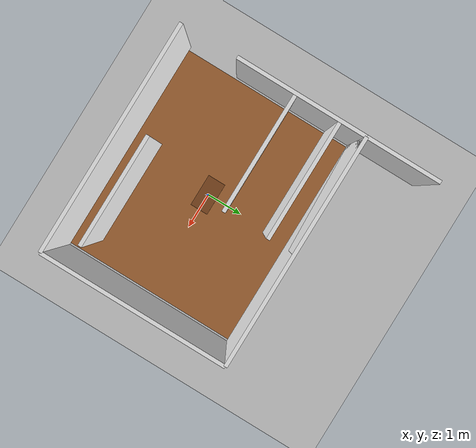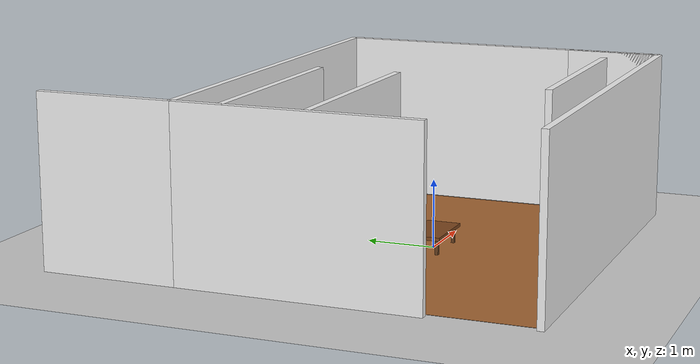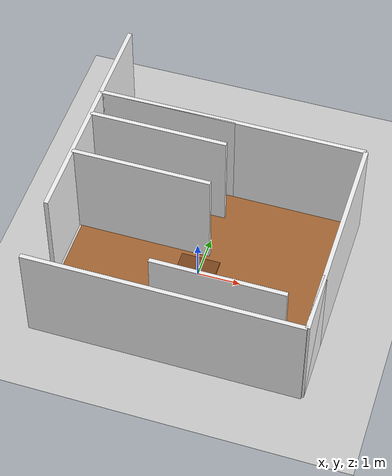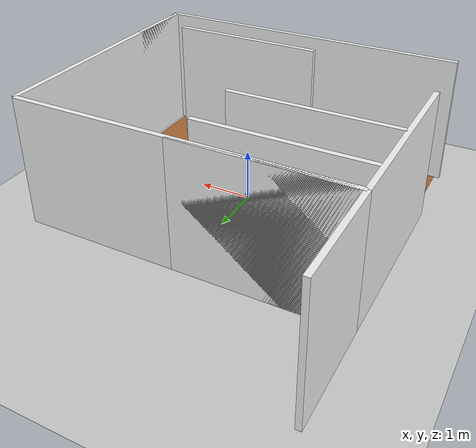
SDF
<?xml version="1.0"?>
<sdf version="1.6">
  <world name="3bhk_house">

    <!-- Physics -->
    <physics type="ode">
      <max_step_size>0.001</max_step_size>
      <real_time_factor>1.0</real_time_factor>
      <real_time_update_rate>1000</real_time_update_rate>
    </physics>

    <!-- Scene -->
    <scene>
      <ambient>0.4 0.4 0.45 1</ambient>
      <background>0.9 0.87 0.82 1</background>
      <shadows>true</shadows>
      <grid>false</grid>
    </scene>

    <!-- Ground -->
    <model name="ground_plane">
      <static>true</static>
      <link name="link">
        <collision name="collision">
          <geometry>
            <plane><normal>0 0 1</normal><size>100 100</size></plane>
          </geometry>
          <surface>
            <friction>
              <ode><mu>100</mu><mu2>50</mu2></ode>
            </friction>
          </surface>
        </collision>
        <visual name="visual">
          <geometry>
            <plane><normal>0 0 1</normal><size>100 100</size></plane>
          </geometry>
          <material>
            <ambient>0.8 0.8 0.8 1</ambient>
            <diffuse>0.8 0.8 0.8 1</diffuse>
          </material>
        </visual>
      </link>
    </model>

    <!-- Sun -->
    <light name="sun" type="directional">
      <pose>10 10 15 0 0 0</pose>
      <diffuse>1 0.95 0.85 1</diffuse>
      <specular>0.3 0.3 0.3 1</specular>
      <direction>-0.45 0.1 -0.88</direction>
      <cast_shadows>true</cast_shadows>
      <shadow><resolution>2048</resolution><near>0.5</near><far>30</far></shadow>
    </light>

    <!-- Indoor lights -->
    <light name="living_light" type="point">
      <pose>0 0 2.5 0 0 0</pose>
      <diffuse>0.9 0.9 0.85 1</diffuse>
      <attenuation><range>8</range><constant>0.5</constant><linear>0.01</linear><quadratic>0.001</quadratic></attenuation>
    </light>
    <light name="kitchen_light" type="point">
      <pose>3.5 -1.5 2.5 0 0 0</pose>
      <diffuse>0.9 0.9 0.85 1</diffuse>
      <attenuation><range>6</range><constant>0.5</constant><linear>0.01</linear><quadratic>0.001</quadratic></attenuation>
    </light>
    <light name="bedroom_light" type="point">
      <pose>-2 3.5 2.5 0 0 0</pose>
      <diffuse>0.9 0.9 0.85 1</diffuse>
      <attenuation><range>6</range><constant>0.5</constant><linear>0.01</linear><quadratic>0.001</quadratic></attenuation>
    </light>

    <!-- ==================== OUTER WALLS ==================== -->
    <!-- North wall (Living room + Kitchen) -->
    <model name="wall_north_living"><static>true</static><pose>0 2.5 1.25 0 0 0</pose>
      <link name="link"><collision name="c"><geometry><box><size>6.2 0.1 2.5</size></box></geometry></collision>
      <visual name="v"><geometry><box><size>6.2 0.1 2.5</size></box></geometry><material><ambient>0.95 0.95 0.95 1</ambient></material></visual></link></model>

    <!-- South wall -->
    <model name="wall_south"><static>true</static><pose>0 -2.5 1.25 0 0 0</pose>
      <link name="link"><collision name="c"><geometry><box><size>6.2 0.1 2.5</size></box></geometry></collision>
      <visual name="v"><geometry><box><size>6.2 0.1 2.5</size></box></geometry><material><ambient>0.95 0.95 0.95 1</ambient></material></visual></link></model>

    <!-- East wall (Living side) -->
    <model name="wall_east_living"><static>true</static><pose>3.1 0 1.25 0 0 0</pose>
      <link name="link"><collision name="c"><geometry><box><size>0.1 5.0 2.5</size></box></geometry></collision>
      <visual name="v"><geometry><box><size>0.1 5.0 2.5</size></box></geometry><material><ambient>0.95 0.95 0.95 1</ambient></material></visual></link></model>

    <!-- East wall (Kitchen extension) -->
    <model name="wall_east_kitchen"><static>true</static><pose>3.1 -1.8 1.25 0 0 0</pose>
      <link name="link"><collision name="c"><geometry><box><size>0.1 1.4 2.5</size></box></geometry></collision>
      <visual name="v"><geometry><box><size>0.1 1.4 2.5</size></box></geometry><material><ambient>0.95 0.95 0.95 1</ambient></material></visual></link></model>

    <!-- West wall (Living) -->
    <model name="wall_west_living"><static>true</static><pose>-3.1 0.75 1.25 0 0 0</pose>
      <link name="link"><collision name="c"><geometry><box><size>0.1 3.5 2.5</size></box></geometry></collision>
      <visual name="v"><geometry><box><size>0.1 3.5 2.5</size></box></geometry><material><ambient>0.95 0.95 0.95 1</ambient></material></visual></link></model>

    <!-- West wall (Bedroom side) -->
    <model name="wall_west_bed"><static>true</static><pose>-3.1 3.5 1.25 0 0 0</pose>
      <link name="link"><collision name="c"><geometry><box><size>0.1 2.0 2.5</size></box></geometry></collision>
      <visual name="v"><geometry><box><size>0.1 2.0 2.5</size></box></geometry><material><ambient>0.95 0.95 0.95 1</ambient></material></visual></link></model>

    <!-- ==================== INNER WALLS ==================== -->
    <!-- Living-Kitchen divider (with doorway at x=2.5) -->
    <model name="wall_living_kitchen_1"><static>true</static><pose>1.0 -1.8 1.25 0 0 0</pose>
      <link name="link"><collision name="c"><geometry><box><size>3.0 0.1 2.5</size></box></geometry></collision>
      <visual name="v"><geometry><box><size>3.0 0.1 2.5</size></box></geometry><material><ambient>0.95 0.95 0.95 1</ambient></material></visual></link></model>

    <!-- Hallway divider -->
    <model name="wall_hallway_north"><static>true</static><pose>-1.5 2.5 1.25 0 0 0</pose>
      <link name="link"><collision name="c"><geometry><box><size>3.2 0.1 2.5</size></box></geometry></collision>
      <visual name="v"><geometry><box><size>3.2 0.1 2.5</size></box></geometry><material><ambient>0.95 0.95 0.95 1</ambient></material></visual></link></model>

    <!-- Bedroom 1 divider (Master) -->
    <model name="wall_bed1_south"><static>true</static><pose>-1.5 1.8 1.25 0 0 0</pose>
      <link name="link"><collision name="c"><geometry><box><size>3.2 0.1 2.5</size></box></geometry></collision>
      <visual name="v"><geometry><box><size>3.2 0.1 2.5</size></box></geometry><material><ambient>0.95 0.95 0.95 1</ambient></material></visual></link></model>

    <!-- Bedroom 2 divider -->
    <model name="wall_bed2_south"><static>true</static><pose>-1.5 0.6 1.25 0 0 0</pose>
      <link name="link"><collision name="c"><geometry><box><size>3.2 0.1 2.5</size></box></geometry></collision>
      <visual name="v"><geometry><box><size>3.2 0.1 2.5</size></box></geometry><material><ambient>0.95 0.95 0.95 1</ambient></material></visual></link></model>

    <!-- Living room floor -->
    <model name="living_floor">
      <static>true</static><pose>0 0 0.002 0 0 0</pose>
      <link name="link"><collision name="c"><geometry><box><size>6.0 5.0 0.004</size></box></geometry></collision>
        <visual name="v"><geometry><box><size>6.0 5.0 0.004</size></box></geometry>
          <material><ambient>0.5 0.3 0.15 1</ambient><diffuse>0.65 0.4 0.2 1</diffuse><specular>0.1 0.1 0.1 1</specular>
            <pbr><metallic>0</metallic><roughness>0.7</roughness></pbr></material></visual></link>
    </model>

    <!-- Coffee table (center of living room) -->
    <model name="coffee_table">
      <static>true</static><pose>0 0 0.25 0 0 0</pose>
      <link name="wood_base">
        <collision name="c"><geometry><box><size>0.9 0.5 0.05</size></box></geometry></collision>
        <visual name="v"><geometry><box><size>0.9 0.5 0.05</size></box></geometry>
          <material><ambient>0.35 0.18 0.08 1</ambient><diffuse>0.5 0.28 0.12 1</diffuse><specular>0.2 0.15 0.1 1</specular></material></visual>
      </link>
      <link name="leg_br"><pose>0.35 0.18 -0.22 0 0 0</pose><collision name="c"><geometry><box><size>0.05 0.05 0.44</size></box></geometry></collision>
        <visual name="v"><geometry><box><size>0.05 0.05 0.44</size></box></geometry><material><ambient>0.3 0.2 0.1 1</ambient><diffuse>0.4 0.25 0.12 1</diffuse></material></visual>
      </link>
      <link name="leg_bl"><pose>-0.35 0.18 -0.22 0 0 0</pose><collision name="c"><geometry><box><size>0.05 0.05 0.44</size></box></geometry></collision>
        <visual name="v"><geometry><box><size>0.05 0.05 0.44</size></box></geometry><material><ambient>0.3 0.2 0.1 1</ambient><diffuse>0.4 0.25 0.12 1</diffuse></material></visual>
      </link>
      <link name="leg_fr"><pose>0.35 -0.18 -0.22 0 0 0</pose><collision name="c"><geometry><box><size>0.05 0.05 0.44</size></box></geometry></collision>
        <visual name="v"><geometry><box><size>0.05 0.05 0.44</size></box></geometry><material><ambient>0.3 0.2 0.1 1</ambient><diffuse>0.4 0.25 0.12 1</diffuse></material></visual>
      </link>
      <link name="leg_fl"><pose>-0.35 -0.18 -0.22 0 0 0</pose><collision name="c"><geometry><box><size>0.05 0.05 0.44</size></box></geometry></collision>
        <visual name="v"><geometry><box><size>0.05 0.05 0.44</size></box></geometry><material><ambient>0.3 0.2 0.1 1</ambient><diffuse>0.4 0.25 0.12 1</diffuse></material></visual>
      </link>
    </model>

  </world>
</sdf>
